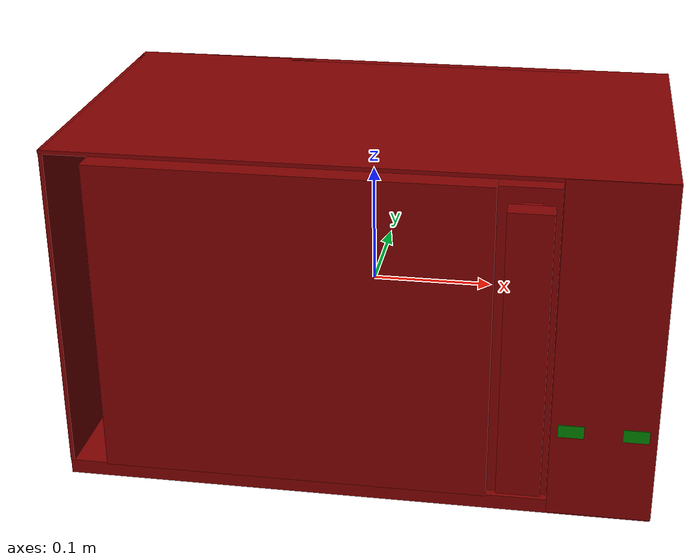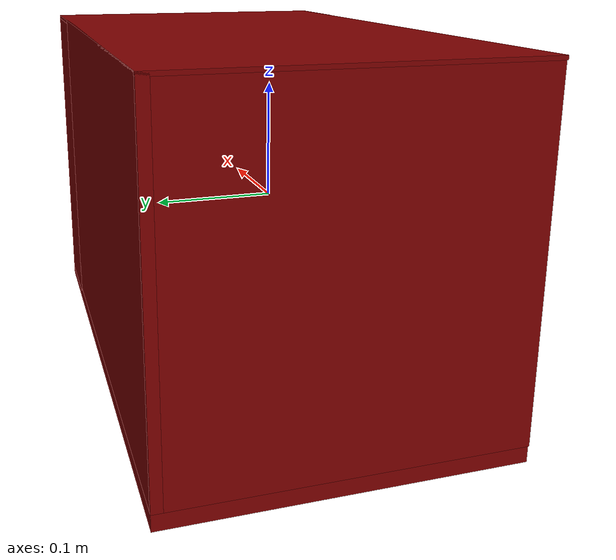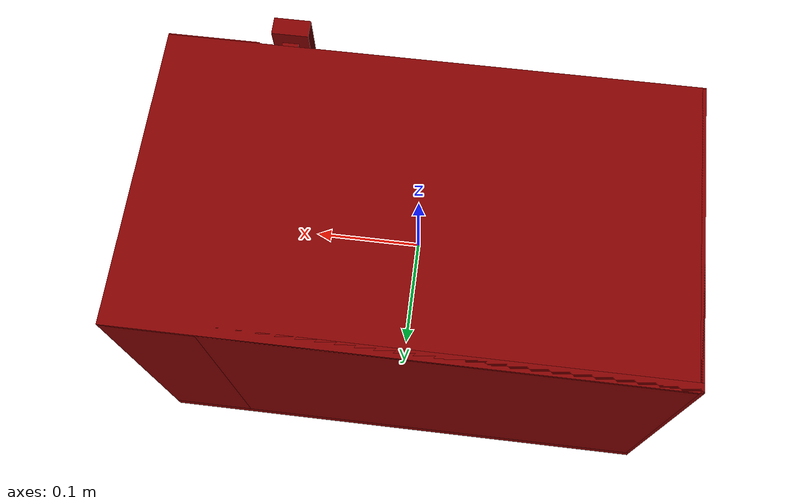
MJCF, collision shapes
<?xml version='1.0' encoding='UTF-8'?>
<mujoco model="model">
  <option timestep="0.002" gravity="0.0 0.0 -9.81"/>
  <compiler angle="radian"/>
  <asset>
    <mesh file="visuals/door.obj" name="door_vis"/>
    <mesh file="visuals/door_Clear.obj" name="door_Clear_vis"/>
    <mesh file="visuals/Body001.obj" name="Body001_vis"/>
    <mesh file="visuals/Disc001.obj" name="Disc001_vis"/>
    <texture file="visuals/T_BC001.png" name="Body001_material" type="2d"/>
    <material name="Body001_material" rgba="1 1 1 1.0" texture="Body001_material" shininess="0.4472135901451111" specular="2"/>
    <texture file="visuals/T_BC001.png" name="door_material" type="2d"/>
    <material name="door_material" rgba="1 1 1 1.0" texture="door_material" shininess="0.4472135901451111" specular="2"/>
    <material name="door_Clear_material" rgba="0.0 0.0 0.0 0.800000011920929" shininess="0.5" specular="1"/>
    <texture file="visuals/T_BC001.png" name="Disc001_material" type="2d"/>
    <material name="Disc001_material" rgba="1 1 1 1.0" texture="Disc001_material" shininess="0.4472135901451111" specular="3"/>
  </asset>
  <default>
    <default class="visual">
      <geom conaffinity="0" contype="0" group="1" type="mesh"/>
    </default>
    <default class="collision">
      <geom group="0" rgba="0.5 0 0 0.5"/>
    </default>
    <default class="spawn">
      <geom group="0" rgba="1 1 1 0.5" contype="0" conaffinity="0"/>
      <site group="0" rgba="1 1 1 0.5"/>
    </default>
    <default class="region">
      <geom group="1" conaffinity="0" contype="0" rgba="0 1 0 0"/>
    </default>
  </default>
  <worldbody>
    <body>
      <body name="object">
        <geom class="collision" type="cylinder" pos="-0.04758674 0.00770179 -0.12633446" size="0.10339249670505524 0.0009999945759773254" quat="1.0 0.0 0.0 0.0" name="tray" rgba="0 1 0 0.5"/>
        <geom class="collision" type="box" pos="0.22559069 -0.12188487 -0.06562836" size="0.010324031114578247 0.00027769256848841906 0.005434299819171429" quat="1.0 0.0 0.0 0.0" name="start_button" rgba="0.0 0.5 0 0.5"/>
        <geom class="collision" type="box" pos="0.17477483 -0.12178986 -0.06560470" size="0.010324031114578247 0.00027769256848841906 0.005434299819171429" quat="1.0 0.0 0.0 0.0" name="stop_button" rgba="0.0 0.5 0 0.5"/>
        <geom mesh="Body001_vis" type="mesh" solimp="0.998 0.998 0.001" solref="0.001 1" friction="0.95 0.3 0.1" class="visual" material="Body001_material"/>
        <geom class="collision" type="box" pos="-0.00000001 0.01877731 -0.13943490" size="0.24220426380634308 0.13692888617515564 0.006243280600756407" quat="1.0 0.0 0.0 0.0"/>
        <geom class="collision" type="box" pos="-0.00000001 0.01780740 0.14409119" size="0.24220426380634308 0.137898787856102 0.0015870238421484828" quat="1.0 0.0 0.0 0.0"/>
        <geom class="collision" type="box" pos="0.20046876 0.01726900 0.00150039" size="0.041735488921403885 0.1384371817111969 0.14417780935764313" quat="1.0 0.0 0.0 0.0"/>
        <geom class="collision" type="box" pos="-0.24051189 0.01833520 0.00623898" size="0.0016923586372286081 0.1373710036277771 0.13943922519683838" quat="1.0 0.0 0.0 0.0"/>
        <geom class="collision" type="box" pos="-0.03989575 0.15148641 0.00623898" size="0.2023085355758667 0.004219771362841129 0.13943922519683838" quat="1.0 0.0 0.0 0.0"/>
        <body name="door">
          <joint axis="0.0 0.0 1.0" pos="-0.22846182 -0.10996792 0.00382642" limited="true" name="microjoint" range="-1.5707963267948966 0.0" type="hinge" damping="1" frictionloss="1" armature=".01" stiffness="0.05"/>
          <geom mesh="door_vis" type="mesh" solimp="0.998 0.998 0.001" solref="0.001 1" friction="0.95 0.3 0.1" class="visual" material="door_material"/>
          <geom class="collision" type="box" pos="-0.05162410 -0.11274186 -0.00656464" size="0.14047184586524963 0.002215971937403083 0.1072295606136322" quat="1.0 0.0 0.0 0.0"/>
          <geom class="collision" type="box" pos="-0.04990488 -0.10986076 0.00166368" size="0.15951237082481384 0.011307419277727604 0.13419228792190552" quat="1.0 0.0 0.0 0.0" name="door_main"/>
          <geom class="collision" type="box" pos="0.13347861 -0.10615424 0.00170836" size="0.024551501497626305 0.007600898388773203 0.1329922080039978" quat="1.0 0.0 0.0 0.0"/>
          <geom class="collision" type="box" pos="0.13599196 -0.12645103 0.11585175" size="0.00770388962700963 0.011615918949246407 0.0072174277156591415" quat="1.0 0.0 0.0 0.0"/>
          <geom class="collision" type="box" pos="0.13599196 -0.12555985 -0.08366450" size="0.00770388962700963 0.011997093446552753 0.00723453052341938" quat="1.0 0.0 0.0 0.0"/>
          <geom class="collision" type="box" pos="0.13645904 -0.14967807 0.01409611" size="0.017230259254574776 0.008574368432164192 0.11783187836408615" quat="1.0 0.0 0.0 0.0" name="door_handle_main"/>
          <body name="door_Clear">
            <geom mesh="door_Clear_vis" type="mesh" solimp="0.998 0.998 0.001" solref="0.001 1" friction="0.95 0.3 0.1" class="visual" material="door_Clear_material"/>
            <geom class="collision" type="box" pos="-0.05162410 -0.11274186 -0.00656464" size="0.14047184586524963 0.002215971937403083 0.1072295606136322" quat="1.0 0.0 0.0 0.0"/>
          </body>
        </body>
        <body name="Disc001">
          <joint axis="0.0 0.0 1.0" pos="-0.04782203 0.00771576 -0.12979725" limited="false" name="Disc001_joint" range="0 360" type="hinge" damping="1" frictionloss="1" armature=".01" stiffness="0.05"/>
          <geom mesh="Disc001_vis" type="mesh" solimp="0.998 0.998 0.001" solref="0.001 1" friction="0.95 0.3 0.1" class="visual" material="Disc001_material"/>
          <geom class="collision" type="cylinder" pos="-0.04758674 0.00770179 -0.13018030" size="0.10339254885911942 0.0021838874090462923" quat="1.0 0.0 0.0 0.0"/>
        </body>
        <geom class="region" name="reg_int" type="box" pos="-0.03987033499999999 0.02759006 0.007467425" size="0.19792483500000002 0.11980653 0.133801895"/>
        <geom class="region" name="reg_main" type="box" pos="4.999999997368221e-09 0.017269 0.0" size="0.243204275 0.13943718 0.14667819"/>
      <geom class="region" name="reg_tray" type="cylinder" pos="-0.04758674 0.00770179 0.00796742728798866" size="0.10339249670505524 0.13230189271201134"/></body>
    </body>
  </worldbody>
  <actuator>
    <motor name="microjoint_actuator" joint="microjoint" gear="10"/>
    <motor name="Disc001_joint_actuator" joint="Disc001_joint" gear="20"/>
  </actuator>
</mujoco>
